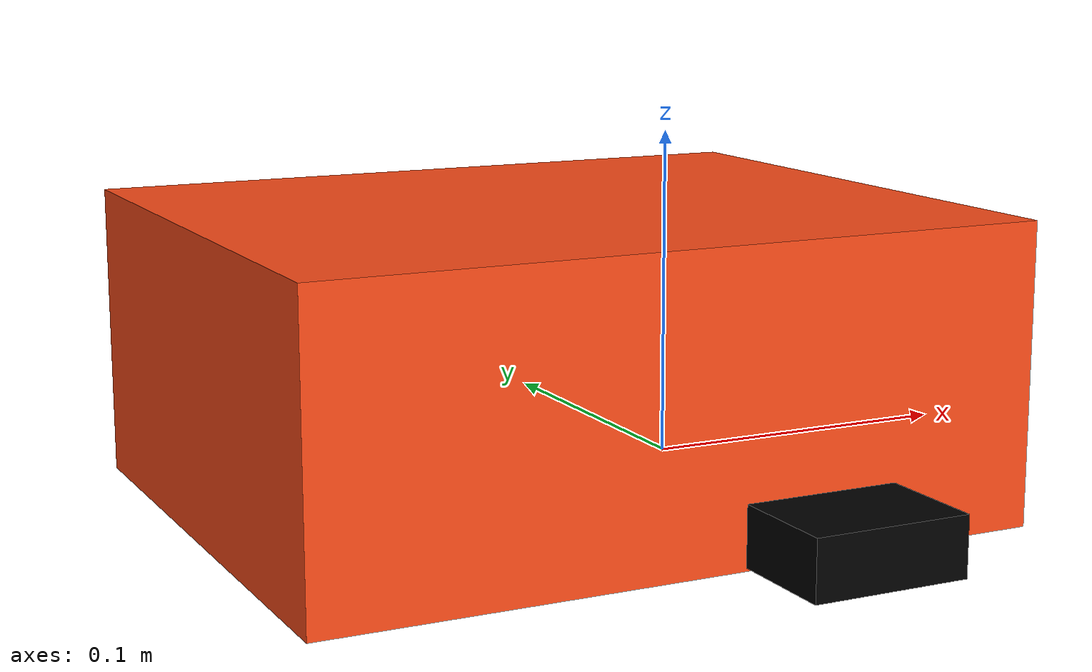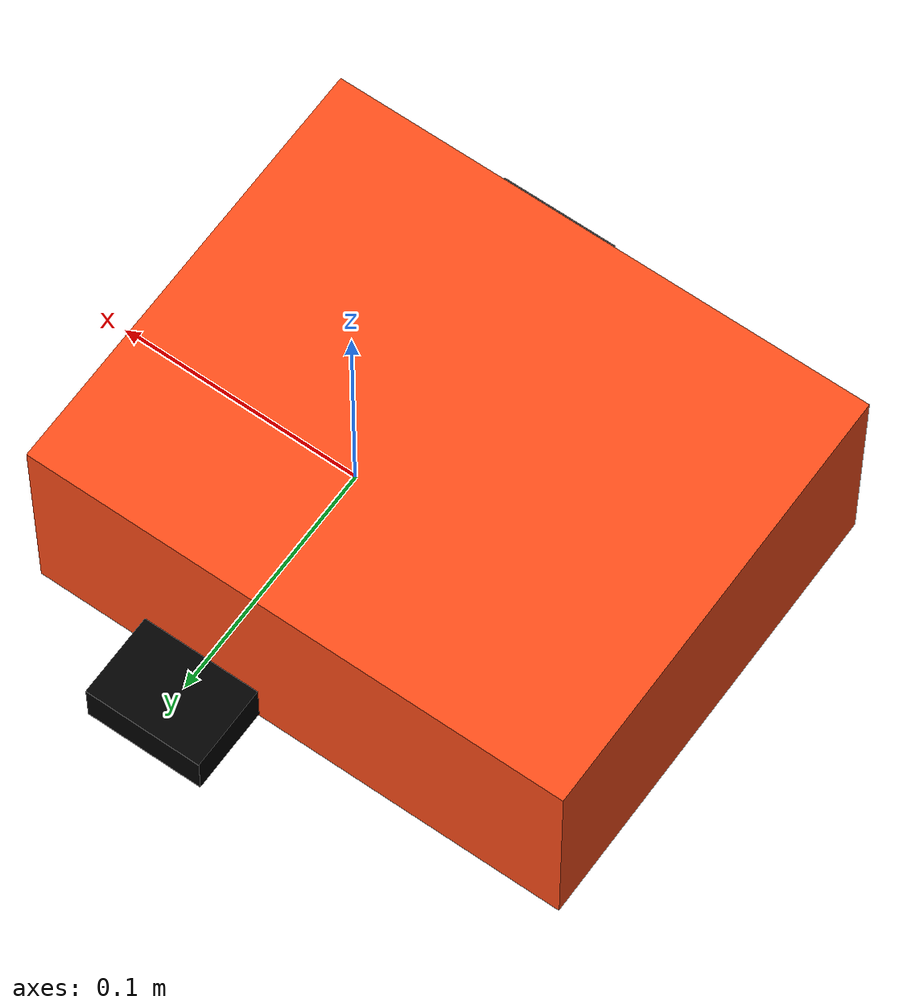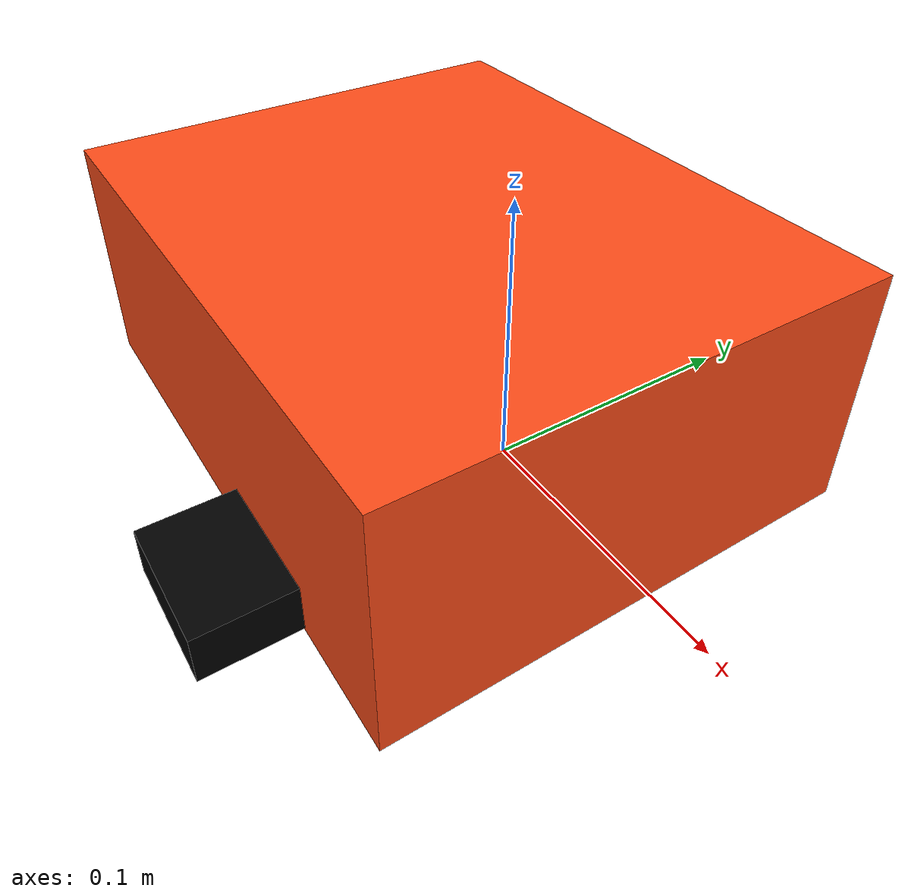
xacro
<?xml version="1.0"?>
<robot xmlns:xacro="http://www.ros.org/wiki/xacro" >

    <xacro:include filename="inertial_macros.xacro"/>

    <xacro:property name="chassis_length" value="0.22"/>
    <xacro:property name="chassis_width" value="0.18"/>
    <xacro:property name="chassis_height" value="0.09"/>
    <xacro:property name="chassis_mass" value="1.0"/>
    <xacro:property name="wheel_radius" value="0.024"/>
    <xacro:property name="wheel_thickness" value="0.018"/>
    <xacro:property name="wheel_mass" value="0.05"/>
    <xacro:property name="wheel_offset_x" value="0.15"/>
    <xacro:property name="wheel_offset_y" value="0.10"/>
    <xacro:property name="wheel_offset_z" value="0.01"/>
    <xacro:property name="caster_wheel_radius" value="0.008"/>
    <xacro:property name="caster_wheel_mass" value="0.01"/>
    <xacro:property name="caster_wheel_offset_x" value="0.05"/>
    <xacro:property name="caster_wheel_offset_z" value="${wheel_offset_z - wheel_radius + caster_wheel_radius}"/>

    <material name="white">
        <color rgba="1 1 1 1" />
    </material>

    <material name="orange">
        <color rgba="1 0.3 0.1 1"/>
    </material>

    <material name="blue">
        <color rgba="0.2 0.2 1 1"/>
    </material>

    <material name="black">
        <color rgba="0 0 0 1"/>
    </material>

    <material name="red">
        <color rgba="1 0 0 1"/>
    </material>

    <!-- BASE LINK -->

    <link name="base_link">

    </link>

    <!-- BASE_FOOTPRINT LINK -->

    <joint name="base_footprint_joint" type="fixed">
        <parent link="base_link"/>
        <child link="base_footprint"/>
        <origin xyz="0 0 0" rpy="0 0 0"/>
    </joint>

    <link name="base_footprint">
    </link>

    <!-- CHASSIS LINK -->

    <joint name="chassis_joint" type="fixed">
        <parent link="base_link"/>
        <child link="chassis"/>
        <origin xyz="${-wheel_offset_x} 0 ${-wheel_offset_z}"/>
    </joint>

    <link name="chassis">
        <visual>
            <origin xyz="${chassis_length/2} 0 ${chassis_height/2}"/>
            <geometry>
                <box size="${chassis_length} ${chassis_width} ${chassis_height}"/>
            </geometry>
            <material name="orange"/>
        </visual>
        <collision>
            <origin xyz="${chassis_length/2} 0 ${chassis_height/2}"/>
            <geometry>
                <box size="${chassis_length} ${chassis_width} ${chassis_height}"/>
            </geometry>
        </collision>
        <xacro:inertial_box mass="0.5" x="${chassis_length}" y="${chassis_width}" z="${chassis_height}">
            <origin xyz="${chassis_length/2} 0 ${chassis_height/2}" rpy="0 0 0"/>
        </xacro:inertial_box>
    </link>

    <!-- LEFT WHEEL LINK -->

    <joint name="left_wheel_joint" type="continuous">
        <parent link="base_link"/>
        <child link="left_wheel"/>
        <origin xyz="0 ${wheel_offset_y} 0" rpy="-${pi/2} 0 0" />
        <axis xyz="0 0 1"/>
    </joint>

    <link name="left_wheel">
        <visual>
            <geometry>
                <!-- Foxglove Web can over-scale rotating cylinder primitives.
                     A box keeps the same physical footprint without covering the map. -->
                <box size="${wheel_radius * 2} ${wheel_thickness} ${wheel_radius * 2}"/>
            </geometry>
            <material name="black"/>
        </visual>
        <collision>
            <geometry>
                <box size="${wheel_radius * 2} ${wheel_thickness} ${wheel_radius * 2}"/>
            </geometry>
        </collision>
        <xacro:inertial_cylinder mass="${wheel_mass}" length="${wheel_thickness}" radius="${wheel_radius}">
            <origin xyz="0 0 0" rpy="0 0 0"/>
        </xacro:inertial_cylinder>
    </link>

    <!-- RIGHT WHEEL LINK -->

    <joint name="right_wheel_joint" type="continuous">
        <parent link="base_link"/>
        <child link="right_wheel"/>
        <origin xyz="0 ${-wheel_offset_y} 0" rpy="${pi/2} 0 0" />
        <axis xyz="0 0 -1"/>
    </joint>

    <link name="right_wheel">
        <visual>
            <geometry>
                <box size="${wheel_radius * 2} ${wheel_thickness} ${wheel_radius * 2}"/>
            </geometry>
            <material name="black"/>
        </visual>
        <collision>
            <geometry>
                <box size="${wheel_radius * 2} ${wheel_thickness} ${wheel_radius * 2}"/>
            </geometry>
        </collision>
        <xacro:inertial_cylinder mass="${wheel_mass}" length="${wheel_thickness}" radius="${wheel_radius}">
            <origin xyz="0 0 0" rpy="0 0 0"/>
        </xacro:inertial_cylinder>
    </link>

    <!-- CASTER WHEEL LINK -->

    <joint name="caster_wheel_joint" type="fixed">
        <parent link="chassis"/>
        <child link="caster_wheel"/>
        <origin xyz="${caster_wheel_offset_x} 0 ${caster_wheel_offset_z}"/>
    </joint>

    <link name="caster_wheel">
        <visual>
            <geometry>
                <box size="${caster_wheel_radius * 2} ${caster_wheel_radius * 2} ${caster_wheel_radius * 2}"/>
            </geometry>
            <material name="white"/>
        </visual>
        <collision>
            <geometry>
                <box size="${caster_wheel_radius * 2} ${caster_wheel_radius * 2} ${caster_wheel_radius * 2}"/>
            </geometry>
        </collision>
        <xacro:inertial_sphere mass="${caster_wheel_mass}" radius="${caster_wheel_radius}">
            <origin xyz="0 0 0" rpy="0 0 0"/>
        </xacro:inertial_sphere>
    </link>

    <gazebo reference="caster_wheel">
        <mu1 value="0.001"/>
        <mu2 value="0.001"/>
    </gazebo>

</robot>
